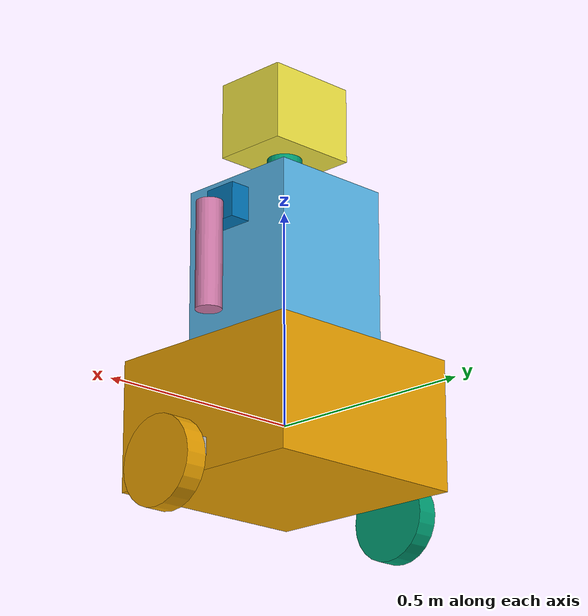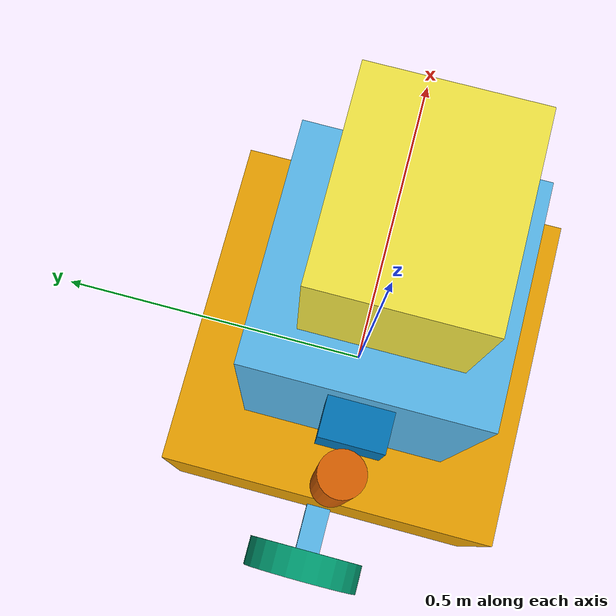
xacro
<?xml version="1.0"?>

<robot xmlns:xacro="http://www.ros.org/wiki/xacro"
       name="eva_h1">

  <link name="base_link">
    <visual>
      <geometry>
        <box size="0.5 0.5 0.3"/>
      </geometry>
    </visual>

    <collision>
      <geometry>
        <box size="0.5 0.5 0.3"/>
      </geometry>
    </collision>

    <inertial>
      <mass value="5.0"/>
      <inertia
        ixx="0.1"
        ixy="0"
        ixz="0"
        iyy="0.1"
        iyz="0"
        izz="0.1"/>
    </inertial>
  </link>

  <link name="torso_link">
    <visual>
      <geometry>
        <box size="0.3 0.3 0.4"/>
      </geometry>
    </visual>
<collision>
  <geometry>
    <box size="0.3 0.3 0.4"/>
  </geometry>
</collision>

<inertial>
  <origin xyz="0 0 0" rpy="0 0 0"/>
  <mass value="3.0"/>
<inertia
    ixx="0.05"
    ixy="0"
    ixz="0"
    iyy="0.05"
    iyz="0"
    izz="0.05"/>
</inertial>

  </link>

  <joint name="torso_joint" type="fixed">
    <parent link="base_link"/>
    <child link="torso_link"/>
    <origin xyz="0 0 0.35"/>
  </joint>

<link name="neck_link">
  <visual>
    <geometry>
      <cylinder radius="0.04" length="0.08"/>
    </geometry>
  </visual>

<collision>
  <geometry>
    <cylinder radius="0.04" length="0.08"/>
  </geometry>
</collision>

<inertial>
  <origin xyz="0 0 0" rpy="0 0 0"/>
  <mass value="0.3"/>

  <inertia
    ixx="0.001"
    ixy="0"
    ixz="0"
    iyy="0.001"
    iyz="0"
    izz="0.001"/>
</inertial>

</link>

<joint name="neck_joint" type="fixed">
  <parent link="torso_link"/>
  <child link="neck_link"/>
  <origin xyz="0 0 0.24"/>
</joint>

<link name="head_link">
  <visual>
    <geometry>
      <box size="0.22 0.18 0.18"/>
    </geometry>
  </visual>

  <collision>
  <geometry>
    <box size="0.22 0.18 0.18"/>
  </geometry>
</collision>

<inertial>
  <origin xyz="0 0 0" rpy="0 0 0"/>
  <mass value="1.0"/>

  <inertia
    ixx="0.01"
    ixy="0"
    ixz="0"
    iyy="0.01"
    iyz="0"
    izz="0.01"/>
</inertial>

</link>

<joint name="head_joint" type="fixed">
  <parent link="neck_link"/>
  <child link="head_link"/>
  <origin xyz="0 0 0.13"/>
</joint>
<link name="shoulder_link">
  <visual>
    <geometry>
      <box size="0.4 0.08 0.08"/>
    </geometry>
  </visual>

<collision>
  <geometry>
    <box size="0.4 0.08 0.08"/>
  </geometry>
</collision>

<inertial>
  <origin xyz="0 0 0" rpy="0 0 0"/>
  <mass value="1.0"/>

  <inertia
    ixx="0.01"
    ixy="0"
    ixz="0"
    iyy="0.01"
    iyz="0"
    izz="0.01"/>
</inertial>

</link>

<joint name="shoulder_joint" type="fixed">
  <parent link="torso_link"/>
  <child link="shoulder_link"/>
  <origin xyz="0 0 0.12"/>
</joint>

<link name="left_upper_arm_link">
  <visual>
    <geometry>
      <cylinder radius="0.03" length="0.25"/>
    </geometry>
  </visual>
<collision>
  <geometry>
    <cylinder radius="0.03" length="0.25"/>
  </geometry>
</collision>

<inertial>
  <origin xyz="0 0 0" rpy="0 0 0"/>
  <mass value="0.8"/>

  <inertia
    ixx="0.005"
    ixy="0"
    ixz="0"
    iyy="0.005"
    iyz="0"
    izz="0.005"/>
</inertial>
</link>

<joint name="left_upper_arm_joint" type="fixed">
  <parent link="shoulder_link"/>
  <child link="left_upper_arm_link"/>
  <origin xyz="-0.23 0 -0.13"/>
</joint>

<link name="right_upper_arm_link">
  <visual>
    <geometry>
      <cylinder radius="0.03" length="0.25"/>
    </geometry>
  </visual>

<collision>
  <geometry>
    <cylinder radius="0.03" length="0.25"/>
  </geometry>
</collision>

<inertial>
  <origin xyz="0 0 0" rpy="0 0 0"/>
  <mass value="0.8"/>

  <inertia
    ixx="0.005"
    ixy="0"
    ixz="0"
    iyy="0.005"
    iyz="0"
    izz="0.005"/>
</inertial>

</link>

<joint name="right_upper_arm_joint" type="fixed">
  <parent link="shoulder_link"/>
  <child link="right_upper_arm_link"/>
  <origin xyz="0.23 0 -0.13"/>
</joint>
<link name="left_axle_link">
  <visual>
    <geometry>
      <box size="0.14 0.04 0.04"/>
    </geometry>
  </visual>

<collision>
  <geometry>
    <box size="0.14 0.04 0.04"/>
  </geometry>
</collision>

<inertial>
  <origin xyz="0 0 0" rpy="0 0 0"/>
  <mass value="0.3"/>

  <inertia
    ixx="0.001"
    ixy="0"
    ixz="0"
    iyy="0.001"
    iyz="0"
    izz="0.001"/>
</inertial>

</link>

<joint name="left_axle_joint" type="fixed">
  <parent link="base_link"/>
  <child link="left_axle_link"/>
  <origin xyz="0.28 0 -0.10"/>
</joint>

<link name="left_wheel_link">
  <visual>
    <geometry>
      <cylinder radius="0.1" length="0.05"/>
    </geometry>
  </visual>

<collision>
  <geometry>
    <cylinder radius="0.1" length="0.05"/>
  </geometry>
</collision>

<inertial>
  <origin xyz="0 0 0" rpy="0 0 0"/>
  <mass value="1.0"/>

  <inertia
    ixx="0.01"
    ixy="0"
    ixz="0"
    iyy="0.01"
    iyz="0"
    izz="0.01"/>
</inertial>
</link>

<joint name="left_wheel_joint" type="continuous">
  <parent link="left_axle_link"/>
  <child link="left_wheel_link"/>

  <origin xyz="0.07 0 -0.05"
          rpy="0 1.5708 0"/>

  <axis xyz="0 1 0"/>
</joint>

<link name="right_axle_link">
  <visual>
    <geometry>
      <box size="0.14 0.04 0.04"/>
    </geometry>
  </visual>

<collision>
  <geometry>
    <box size="0.14 0.04 0.04"/>
  </geometry>
</collision>

<inertial>
  <origin xyz="0 0 0" rpy="0 0 0"/>
  <mass value="0.3"/>

  <inertia
    ixx="0.001"
    ixy="0"
    ixz="0"
    iyy="0.001"
    iyz="0"
    izz="0.001"/>
</inertial>
</link>

<joint name="right_axle_joint" type="fixed">
  <parent link="base_link"/>
  <child link="right_axle_link"/>
  <origin xyz="-0.28 0 -0.10"/>
</joint>

<link name="right_wheel_link">
  <visual>
    <geometry>
      <cylinder radius="0.1" length="0.05"/>
    </geometry>
  </visual>

<collision>
  <geometry>
    <cylinder radius="0.1" length="0.05"/>
  </geometry>
</collision>

<inertial>
  <origin xyz="0 0 0" rpy="0 0 0"/>
  <mass value="1.0"/>

  <inertia
    ixx="0.01"
    ixy="0"
    ixz="0"
    iyy="0.01"
    iyz="0"
    izz="0.01"/>
</inertial>
</link>

<joint name="right_wheel_joint" type="continuous">
  <parent link="right_axle_link"/>
  <child link="right_wheel_link"/>

  <origin xyz="-0.07 0 -0.05"
          rpy="0 1.5708 0"/>

  <axis xyz="0 1 0"/>
</joint>

<ros2_control name="EvaH1System" type="system">

  <hardware>
    <plugin>gazebo_ros2_control/GazeboSystem</plugin>
  </hardware>

  <joint name="left_wheel_joint">
    <command_interface name="velocity"/>

    <state_interface name="position"/>
    <state_interface name="velocity"/>
  </joint>

  <joint name="right_wheel_joint">
    <command_interface name="velocity"/>

    <state_interface name="position"/>
    <state_interface name="velocity"/>
  </joint>

</ros2_control>

<gazebo>
  <plugin
      name="gazebo_ros2_control"
      filename="libgazebo_ros2_control.so">
    <parameters>$(find eva_h1_description)/config/controllers.yaml</parameters>
  </plugin>
</gazebo>S
</robot>
